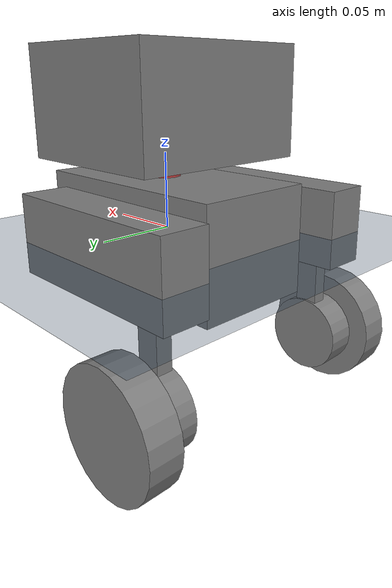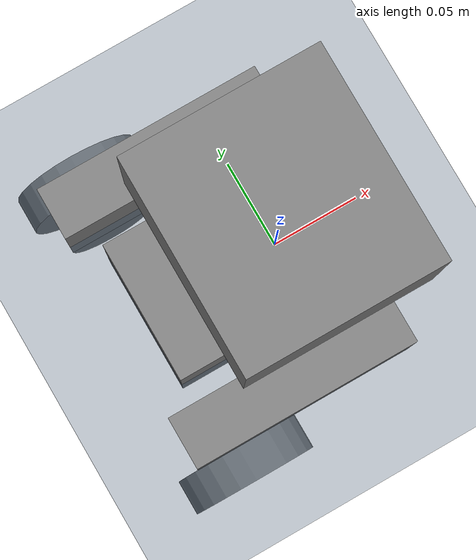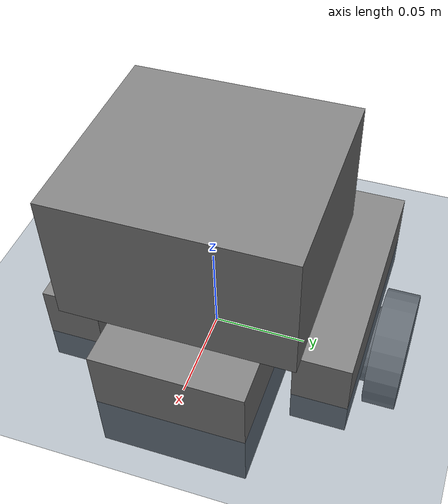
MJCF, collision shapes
<!-- Viewer scene for the Open Beni MJCF.
     Robot file is unmodified: mjcf/beni.xml from Mondo-Robotics/open-beni.
     Floor and sky match the MuJoCo default scene used by the Microduck preview. -->
<mujoco model="scene_viewer_beni">
    <compiler angle="radian" meshdir="meshes" texturedir="textures" />
    <include file="mjcf/beni.xml" />

    <visual>
        <headlight diffuse="0.6 0.6 0.6" ambient="0.3 0.3 0.3" specular="0 0 0" />
        <rgba haze="0.15 0.25 0.35 1" />
        <global azimuth="160" elevation="-20" offwidth="1600" offheight="1200" />
    </visual>

    <asset>
        <texture type="skybox" builtin="gradient" rgb1="0.3 0.5 0.7" rgb2="0 0 0" width="512"
            height="3072" />
        <texture type="2d" name="groundplane" builtin="checker" mark="edge" rgb1="0.2 0.3 0.4"
            rgb2="0.1 0.2 0.3" markrgb="0.8 0.8 0.8" width="300" height="300" />
        <material name="groundplane" texture="groundplane" texuniform="true" texrepeat="5 5"
            reflectance="0.2" />
    </asset>

    <worldbody>
        <light pos="0 0 3.5" dir="0 0 -1" directional="true" />
        <geom name="floor" size="0 0 0.05" pos="0 0 0" type="plane" material="groundplane" />
    </worldbody>
</mujoco>

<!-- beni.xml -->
<!-- Copyright (c) 2026 Open Beni
     SPDX-License-Identifier: MIT -->
<mujoco model="beni">
  <compiler angle="radian" meshdir="meshes" texturedir="textures"/>
  <asset>
    <!-- Textured visuals from beni/build/scene.xml. The RGB map includes baked AO and emissive. -->
    <texture name="tex_beni" type="2d" file="beni_white.png"/>
    <texture name="tex_beni_emissive" type="2d" file="tex_beni_emissive.png"/>
    <texture name="tex_beni_normal" type="2d" file="tex_beni_normal.png"/>
    <texture name="tex_beni_orm" type="2d" file="tex_beni_orm.png"/>
    <material name="mat_beni" texuniform="false" specular="0.672" shininess="0.452">
      <layer texture="tex_beni" role="rgb"/>
      <layer texture="tex_beni_emissive" role="emissive"/>
      <layer texture="tex_beni_normal" role="normal"/>
      <layer texture="tex_beni_orm" role="orm"/>
    </material>
    <mesh name="BASE_VIS" file="VIS_base_link_00_BASE_VIS.obj" inertia="shell"
          refpos="0 0.11 0" refquat="0.707106781187 -0.707106781187 0 0"/>
    <mesh name="HEAD_VIS" file="VIS_head_00_HEAD_VIS.obj" inertia="shell"
          refpos="0 0.1469 0" refquat="0.707106781187 -0.707106781187 0 0"/>
    <mesh name="L1_VIS" file="VIS_L1_Link_00_L1_VIS.obj" inertia="shell"
          refpos="0 0.11 -0.048" refquat="0.69916673425 -0.69916673425 -0.10566871684 0.10566871684"/>
    <mesh name="L2_VIS" file="VIS_L2_Link_00_L1_VIS.obj" inertia="shell"
          refpos="-0.0668735542388 0.0893135855337 -0.072" refquat="0.651288474746 -0.651288474746 -0.275360350565 0.275360350565"/>
    <mesh name="LW_VIS" file="VIS_LW_Link_00_LW_VIS.obj" inertia="shell"
          refpos="-0.0130718474213 0.0370605823327 -0.08" refquat="0.651288474746 -0.651288474746 -0.275360350565 0.275360350565"/>
    <mesh name="R1_VIS" file="VIS_R1_Link_00_R1_VIS.obj" inertia="shell"
          refpos="0 0.11 0.048" refquat="0.69916673425 -0.69916673425 -0.10566871684 0.10566871684"/>
    <mesh name="R2_VIS" file="VIS_R2_Link_00_R2_VIS.obj" inertia="shell"
          refpos="-0.0668735542388 0.0893135855337 0.072" refquat="0.651288474746 -0.651288474746 -0.275360350565 0.275360350565"/>
    <mesh name="RW_VIS" file="VIS_RW_Link_00_RW_VIS.obj" inertia="shell"
          refpos="-0.0130718474213 0.0370605823327 0.08" refquat="0.651288474746 -0.651288474746 -0.275360350565 0.275360350565"/>
  </asset>
  <worldbody>
    <!-- Group 1: visible textured meshes. Group 3: collision primitives, hidden by default.
         Collision uses coarse exterior boxes and cylinders; no internal CAD meshes. -->
    <body name="base_link">
      <joint name="root_joint" type="free"/>
      <inertial pos="-0.026830109 -0.00097765393 -0.0006967038800000001" mass="0.60837039" fullinertia="0.0005842953 0.0017198711 0.0016573369 4.5142416e-5 -1.617345e-5 2.7632628e-6"/>
      <geom type="mesh" contype="0" conaffinity="0" group="1" density="0" material="mat_beni" mesh="BASE_VIS"/>
      <geom name="base_collision" group="3" type="box" pos="-0.005 0 0" size="0.075 0.04 0.035"/>
      <site name="imu_site" pos="0 0 0" size="0.01" rgba="0 1 0 0.5"/>
      <!-- Match the 80x60 depth camera calibration: fy=31.875, cy=30. -->
      <camera name="depth_front" pos="0.07 0.03 -0.016" quat="0.5 0.5 -0.5 -0.5" fovy="86.529"/>
      <body name="head_intermediate" pos="-0.000 0 0.0">
        <inertial pos="0 0 0" mass="1e-9" fullinertia="1e-9 1e-9 1e-9 0 0 0"/>
        <joint name="head_yaw_joint" pos="0 0 0" axis="0 0 1" range="-5.20 5.20" actuatorfrcrange="-0.1 0.1" armature="0" frictionloss="0" damping="0"/>
        <body name="head" pos="0 0 0.0369">
          <inertial pos="0.0057515429 -3.3763401999999995e-5 0.030715793999999998" mass="0.22713973" fullinertia="0.00021585924 0.00023532522 0.00035076542 -1.4175017000000002e-7 -8.913237299999999e-7 1.6379191e-7"/>
          <joint name="head_roll_joint" pos="0 0 0" axis="1 0 0" range="-0.05 0.05" actuatorfrcrange="-1000.0 1000.0" armature="0" frictionloss="0" damping="0"/>
          <geom type="mesh" contype="0" conaffinity="0" group="1" density="0" material="mat_beni" mesh="HEAD_VIS"/>
          <geom name="head_collision" group="3" type="box" pos="0 0 0.045" size="0.055 0.06 0.035"/>
          <site name="head_imu_site" pos="0 0 0" size="0.01" rgba="1 0 0 0.5"/>
        </body>
      </body>
      <body name="L1_Link" pos="0 0.048 0">
        <inertial pos="-0.008230681600000001 -0.005782016300000001 0.0008501348800000001" mass="0.26100817" fullinertia="0.00010581644 0.00016271403000000002 0.00018314794 3.2467542e-5 6.1594071e-6 -1.2252857e-5"/>
        <joint name="L1" pos="0 0 0" axis="0 -1 0" ref="0.3" range="-2.5307 6.8940" actuatorfrcrange="-1.375 1.375" armature="0.00016253425" frictionloss="0.04" damping="0"/>
        <geom type="mesh" contype="0" conaffinity="0" group="1" density="0" material="mat_beni" mesh="L1_VIS"/>
        <geom name="L1_collision" group="3" type="box" pos="-0.03 0.02 0.005" size="0.065 0.015 0.025"/>
        <body name="L2_Link" pos="-0.07 0.024 0">
          <inertial pos="0.00016609656 0.005196929800000001 -0.062290377999999993" mass="0.08287119" fullinertia="7.0858589e-5 7.582624900000001e-5 1.3020969e-5 9.7216964e-8 -5.991245400000001e-7 8.7535112e-6"/>
          <joint name="L2" pos="0 0 0" axis="0 -1 0" ref="0.5" range="-0.7853981633974483 1.1344640137963142" actuatorfrcrange="-3.6 3.6" armature="0.00053748" frictionloss="0.04" damping="0"/>
          <geom type="mesh" contype="0" conaffinity="0" group="1" density="0" material="mat_beni" mesh="L2_VIS"/>
          <geom group="3" pos="0.00 -0.0035 -0.035" type="box" size="0.0075 0.005 0.0325"/>
          <geom name="L2_collision" group="3" type="cylinder" pos="0 0 -0.075"
                quat="0.7071067811865476 0.7071067811865475 0 0" size="0.025 0.01"/>
          <body name="LW_Link" pos="0 0.008 -0.075">
            <inertial pos="2.2944408999999998e-5 0.01067511 0.00017766532" mass="0.076978199" fullinertia="2.4617683e-5 3.9531034e-5 2.4625466e-5 -1.6383694e-8 7.8264342e-9 -1.4443679000000002e-7"/>
            <joint name="LW" pos="0 0 0" axis="0 -1 0" actuatorfrcrange="-0.6 0.6" armature="0" frictionloss="0.004" damping="0"/>
            <geom type="mesh" contype="0" conaffinity="0" group="1" density="0" material="mat_beni" mesh="LW_VIS"/>
            <geom group="3" pos="0 0.013 0" quat="0.7071067811865476 0.7071067811865475 0 0" type="cylinder" size="0.038 0.0105"/>
          </body>
        </body>
      </body>
      <body name="R1_Link" pos="0 -0.048 0">
        <inertial pos="-0.008230681600000001 0.005782016300000001 0.0008501348800000001" mass="0.26100817" fullinertia="0.00010581644 0.00016271403000000002 0.00018314794 -3.2467542e-5 6.1594071e-6 1.2252857e-5"/>
        <joint name="R1" pos="0 0 0" axis="0 -1 0" ref="0.3" range="-2.5307 6.8940" actuatorfrcrange="-1.375 1.375" armature="0.00016253425" frictionloss="0.04" damping="0"/>
        <geom type="mesh" contype="0" conaffinity="0" group="1" density="0" material="mat_beni" mesh="R1_VIS"/>
        <geom name="R1_collision" group="3" type="box" pos="-0.03 -0.02 0.005" size="0.065 0.015 0.025"/>
        <body name="R2_Link" pos="-0.07 -0.024 0">
          <inertial pos="0.00016609656 -0.005196929800000001 -0.062290377999999993" mass="0.08287119" fullinertia="7.0858589e-5 7.582624900000001e-5 1.3020969e-5 -9.7216964e-8 -5.991245400000001e-7 -8.7535112e-6"/>
          <joint name="R2" pos="0 0 0" axis="0 -1 0" ref="0.5" range="-0.7853981633974483 1.1344640137963142" actuatorfrcrange="-3.6 3.6" armature="0.00053748" frictionloss="0.04" damping="0"/>
          <geom type="mesh" contype="0" conaffinity="0" group="1" density="0" material="mat_beni" mesh="R2_VIS"/>
          <geom group="3" pos="0.00 0.0035 -0.035" type="box" size="0.0075 0.005 0.0325"/>
          <geom name="R2_collision" group="3" type="cylinder" pos="0 0 -0.075"
                quat="0.7071067811865476 0.7071067811865475 0 0" size="0.025 0.01"/>
          <body name="RW_Link" pos="0 -0.008 -0.075">
            <inertial pos="2.2944408999999998e-5 -0.01067511 0.00017766532" mass="0.076978199" fullinertia="2.4617683e-5 3.9531034e-5 2.4625466e-5 1.6383694e-8 7.8264342e-9 1.4443679000000002e-7"/>
            <joint name="RW" pos="0 0 0" axis="0 -1 0" actuatorfrcrange="-0.6 0.6" armature="0" frictionloss="0.004" damping="0"/>
            <geom type="mesh" contype="0" conaffinity="0" group="1" density="0" material="mat_beni" mesh="RW_VIS"/>
            <geom group="3" pos="0 -0.013 0" quat="0.7071067811865476 0.7071067811865475 0 0" type="cylinder" size="0.038 0.0105"/>
          </body>
        </body>
      </body>
    </body>
  </worldbody>
  <actuator>
    <position name="head_yaw_pos" joint="head_yaw_joint" kp="0.5" ctrlrange="-100000 100000" forcerange="-0.1 0.1"/>
    <velocity name="head_yaw_vel" joint="head_yaw_joint" kv="0.02" ctrlrange="-100000 100000" forcerange="-0.1 0.1"/>
    <motor name="head_yaw_tor" joint="head_yaw_joint" gear="1" ctrlrange="-0.1 0.1"/>
    <position name="head_roll_pos" joint="head_roll_joint" kp="0.5" ctrlrange="-100000 100000" forcerange="-1000.0 1000.0"/>
    <velocity name="head_roll_vel" joint="head_roll_joint" kv="0.02" ctrlrange="-100000 100000" forcerange="-1000.0 1000.0"/>
    <motor name="head_roll_tor" joint="head_roll_joint" gear="1" ctrlrange="-1000.0 1000.0"/>
    <position name="L1_pos" joint="L1" kp="0.5" ctrlrange="-100000 100000" forcerange="-1000.0 1000.0"/>
    <velocity name="L1_vel" joint="L1" kv="0.02" ctrlrange="-100000 100000" forcerange="-1000.0 1000.0"/>
    <motor name="L1_tor" joint="L1" gear="1" ctrlrange="-1.375 1.375"/>
    <position name="L2_pos" joint="L2" kp="0.5" ctrlrange="-100000 100000" forcerange="-1000 1000"/>
    <velocity name="L2_vel" joint="L2" kv="0.02" ctrlrange="-100000 100000" forcerange="-1000 1000"/>
    <motor name="L2_tor" joint="L2" gear="1" ctrlrange="-3.6 3.6"/>
    <!-- Wheel velocity actuator names must match the deployment controller. -->
    <velocity name="LW" joint="LW" kv="0.004" ctrlrange="-100000 100000" forcerange="-1000 1000"/>
    <motor name="LW_tor" joint="LW" gear="1" ctrlrange="-0.6 0.6"/>
    <position name="R1_pos" joint="R1" kp="0.5" ctrlrange="-100000 100000" forcerange="-1000.0 1000.0"/>
    <velocity name="R1_vel" joint="R1" kv="0.02" ctrlrange="-100000 100000" forcerange="-1000.0 1000.0"/>
    <motor name="R1_tor" joint="R1" gear="1" ctrlrange="-1.375 1.375"/>
    <position name="R2_pos" joint="R2" kp="0.5" ctrlrange="-100000 100000" forcerange="-1000 1000"/>
    <velocity name="R2_vel" joint="R2" kv="0.02" ctrlrange="-100000 100000" forcerange="-1000 1000"/>
    <motor name="R2_tor" joint="R2" gear="1" ctrlrange="-3.6 3.6"/>
    <velocity name="RW" joint="RW" kv="0.004" ctrlrange="-100000 100000" forcerange="-1000 1000"/>
    <motor name="RW_tor" joint="RW" gear="1" ctrlrange="-0.6 0.6"/>
  </actuator>
  <sensor>
    <accelerometer name="imu_acc" site="imu_site"/>
    <gyro name="imu_gyro" site="imu_site"/>
    <framequat name="imu_quat" objtype="site" objname="imu_site"/>
    <velocimeter name="base_vel" site="imu_site"/>
    <accelerometer name="head_imu_acc" site="head_imu_site"/>
    <gyro name="head_imu_gyro" site="head_imu_site"/>
    <framequat name="head_imu_quat" objtype="site" objname="head_imu_site"/>
  </sensor>
</mujoco>
